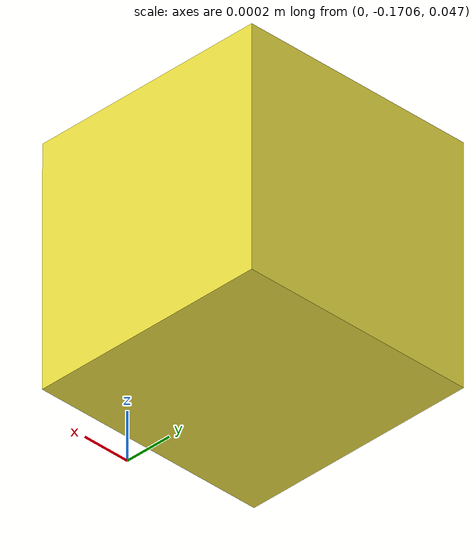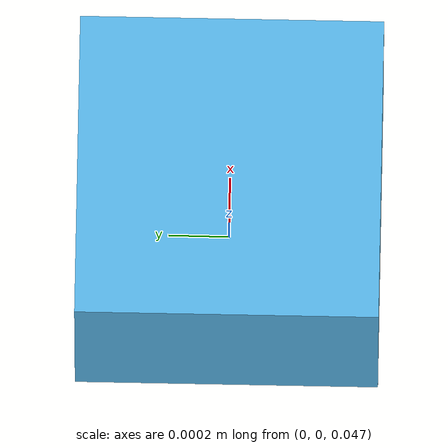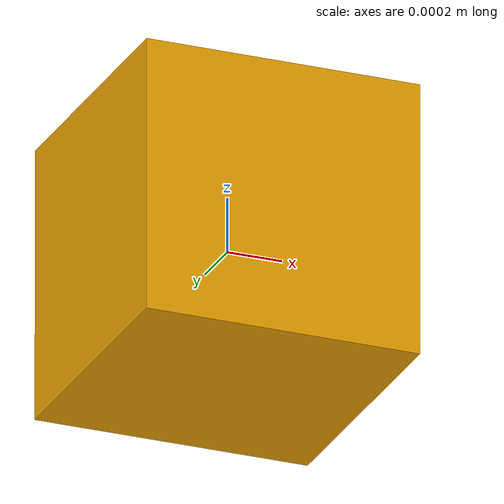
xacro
<?xml version="1.0" ?>
<robot name="NadMobility" xmlns:xacro="http://ros.org/wiki/xacro">
    <!-- base_footprint-->
    <link name="base_footprint">
        <inertial>
            <mass value="0.0001"/>
            <origin xyz="0 0 0"/>
            <inertia ixx="0.0001" ixy="0.0" ixz="0.0"
                   iyy="0.0001" iyz="0.0"
                   izz="0.0001"/>
        </inertial>
        <visual>
          <geometry>
              <box size="0.001 0.001 0.001"/>
          </geometry>
          <origin rpy="0 0 0" xyz="0 0 0"/>
        </visual>
    </link>

    <!-- base_link-->
    <link name="base_link">
        <pose>0 0 0 0 0 0</pose>
        <inertial>
            <mass value="10.0"/>
            <origin xyz="0.0 0 0.1" rpy=" 0 0 0"/>
        <inertia
          ixx="0.5" ixy="0" ixz="0"
          iyy="1.0" iyz="0"
          izz="0.1"
        />
        </inertial>

        <collision name='collision'>
        <geometry>
            <box size="0.001 0.001 0.001"/>
        </geometry>
        </collision>

        <visual name='base_link_visual'>
            <origin xyz="0 0 0" rpy=" 0 0 0"/>
            <geometry>
                <box size="0.001 0.001 0.001"/>
            </geometry>
        </visual>

    </link>

    <!-- left_wheel-->
    <link name="left_wheel">
        <collision name="collision">
              <origin xyz="0 0 0" rpy="0 1.5707 1.5707"/>
              <geometry>
                <box size="0.001 0.001 0.001"/>
              </geometry>
        </collision>
            <visual name="left_wheel_visual">
              <origin xyz="0 0 0" rpy="0 1.5707 1.5707"/>
              <geometry>
                <box size="0.001 0.001 0.001"/>
              </geometry>>
            </visual>
        <inertial>
              <origin xyz="0 0 0" rpy="0 1.5707 1.5707"/>
              <mass value="5"/>
              <geometry>
                <box size="0.001 0.001 0.001"/>
              </geometry>
              <inertia
                ixx="1.0" ixy="0.0" ixz="0.0"
                iyy="1.0" iyz="0.0"
                izz="1.0"/>
        </inertial>
    </link>

    <!-- right_wheel-->
    <link name="right_wheel">
        <collision name="collision">
          <origin xyz="0 0 0" rpy="0 1.5707 1.5707"/>
          <geometry>
            <box size="0.001 0.001 0.001"/>
          </geometry>
        </collision>

        <visual name="right_wheel_visual">
          <origin xyz="0 0 0" rpy="0 1.5707 1.5707"/>
          <geometry>
            <box size="0.001 0.001 0.001"/>
          </geometry>
        </visual>
        <inertial>
          <origin xyz="0 0 0" rpy="0 1.5707 1.5707"/>
          <mass value="5"/>
          <geometry>
            <box size="0.001 0.001 0.001"/>
          </geometry>          <inertia
            ixx="1.0" ixy="0.0" ixz="0.0"
            iyy="1.0" iyz="0.0"
            izz="1.0"/>
        </inertial>
    </link>

    <!--&lt;!&ndash; laser_link&ndash;&gt;-->

            <!--ixx="1.0" ixy="0.0" ixz="0.0"-->
            <!--iyy="1.0" iyz="0.0"-->

    <joint name="base_footprint_joint" type="fixed">
        <parent link="base_footprint"/>
        <child link="base_link"/>
        <origin xyz="0 0 0.0475" rpy="0 0 0"/>
    </joint>

    <joint name="left_wheel_joint" type="continuous">
        <origin xyz="0 0.17 0" rpy="0 0 0"/>
        <child link="left_wheel"/>
        <parent link="base_link"/>
        <axis xyz="0 1 0" rpy="0 0 0"/>
        <limit effort="100" velocity="100"/>
        <joint_properties damping="0.0" friction="0.0"/>
    </joint>

    <joint name="right_wheel_joint" type="continuous">
        <origin xyz="0 -0.17 0" rpy="0 0 0"/>
        <child link="right_wheel"/>
        <parent link="base_link"/>
        <axis xyz="0 1 0" rpy="0 0 0"/>
        <limit effort="100" velocity="100"/>
        <joint_properties damping="0.0" friction="0.0"/>
    </joint>
</robot>
